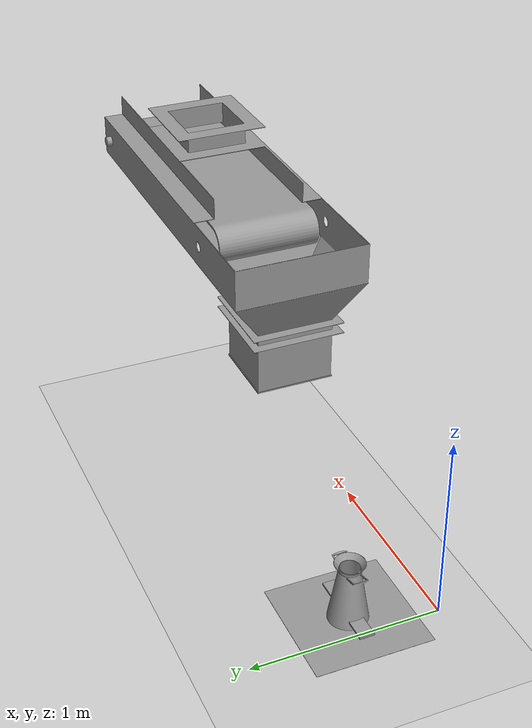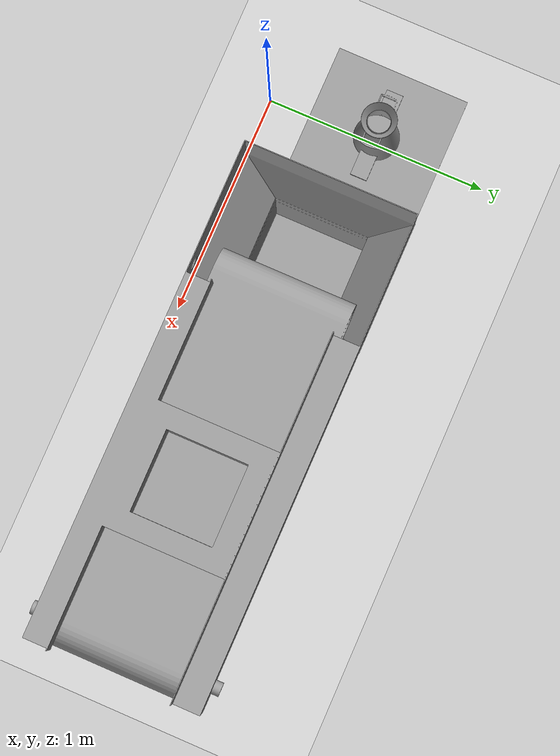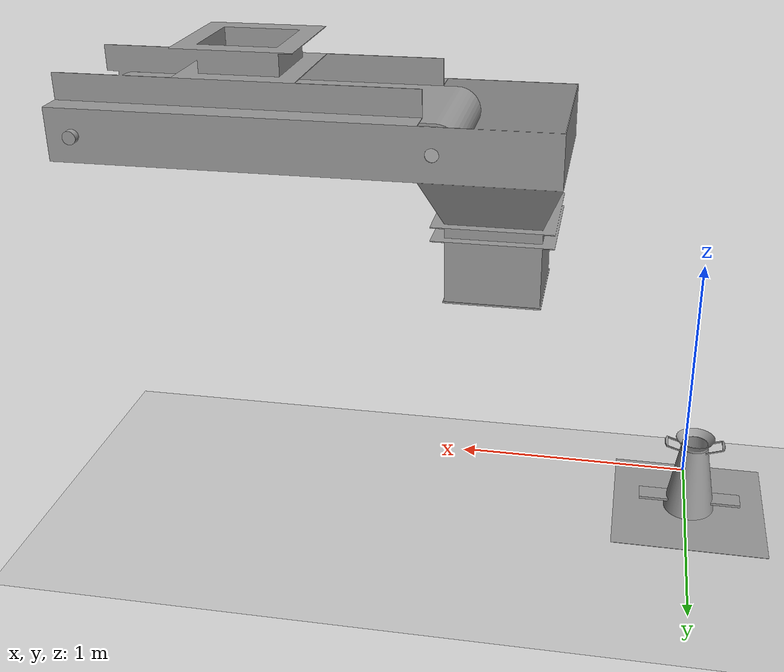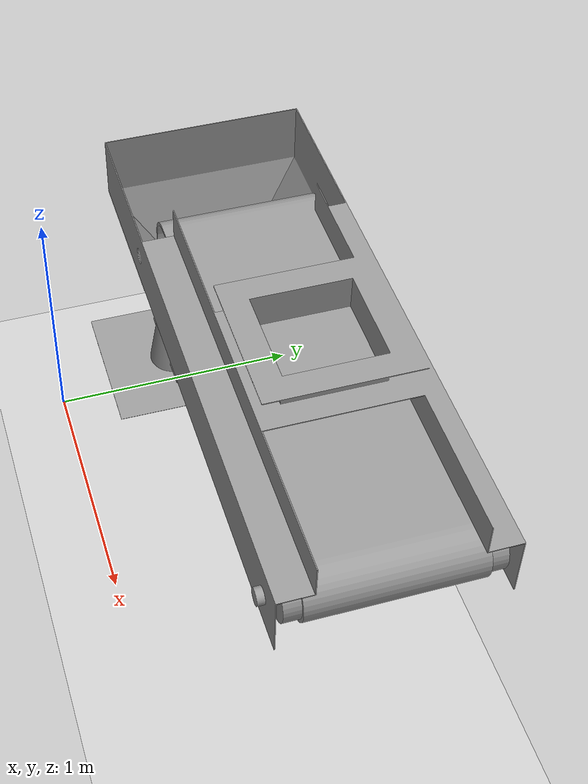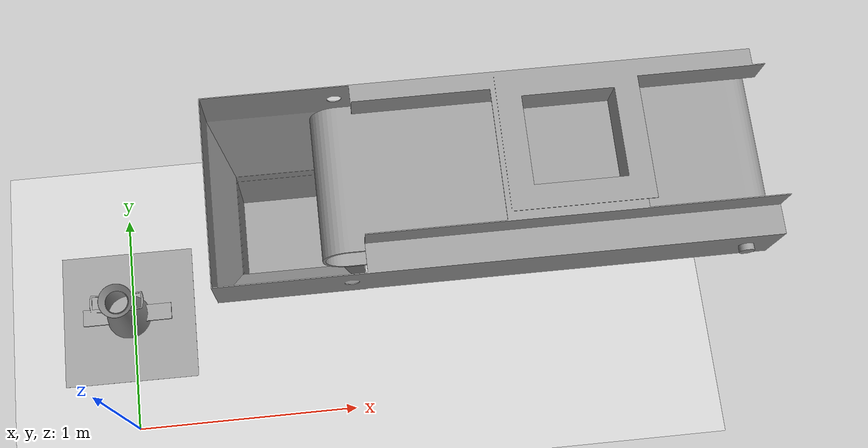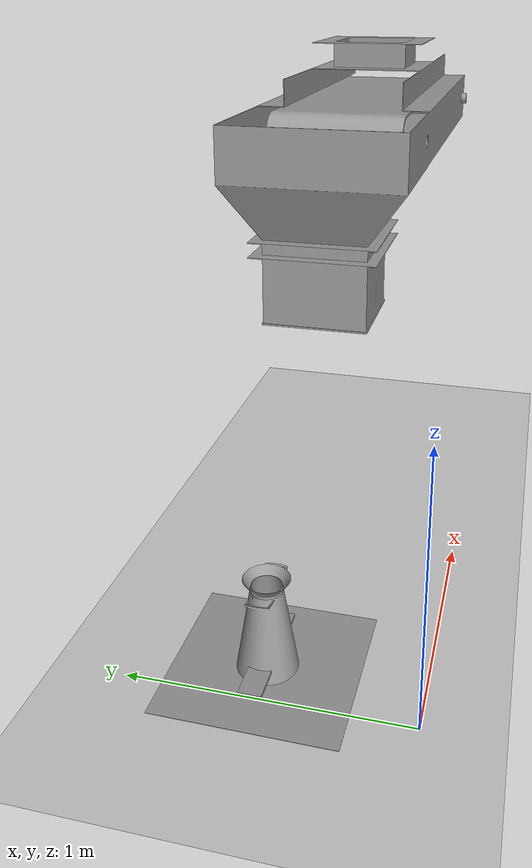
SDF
<sdf version="1.7">
 <world name="__default__">
  <model name="ground_plane">
   <static>1</static>
   <link name="link">
    <collision name="collision">
     <geometry><plane><normal>0 0 1</normal><size>100 100</size></plane></geometry>
     <surface>
      <contact><collide_bitmask>65535</collide_bitmask></contact>
      <friction><ode><mu>100</mu><mu2>50</mu2></ode></friction>
     </surface>
    </collision>
    <visual name="visual">
     <cast_shadows>0</cast_shadows>
     <geometry><plane><normal>0 0 1</normal><size>100 100</size></plane></geometry>
     <material>
      <script><uri>file://media/materials/scripts/gazebo.material</uri><name>Gazebo/Grey</name></script>
     </material>
    </visual>
   </link>
   <pose>0.013387 -1.12541 0 0 -0 0</pose>
  </model>
  <model name="feeder_rubble">
   <link name="link_3">
    <inertial>
     <mass>1</mass>
     <inertia>
      <ixx>0.166667</ixx>
      <ixy>0</ixy>
      <ixz>0</ixz>
      <iyy>0.166667</iyy>
      <iyz>0</iyz>
      <izz>0.166667</izz>
     </inertia>
    </inertial>
    <kinematic>1</kinematic>
    <visual name="visual">
     <geometry><mesh><uri>file://models/feeder_rubble/meshes/body.stl</uri><scale>1 1 1</scale></mesh></geometry>
     <material>
      <lighting>1</lighting>
      <script><uri>file://media/materials/scripts/gazebo.material</uri><name>Gazebo/Grey</name></script>
      <shader type="pixel"><normal_map>__default__</normal_map></shader>
      <ambient>0.3 0.3 0.3 1</ambient>
      <diffuse>0.7 0.7 0.7 1</diffuse>
      <specular>0.01 0.01 0.01 1</specular>
      <emissive>0 0 0 1</emissive>
     </material>
    </visual>
    <collision name="collision">
     <geometry><mesh><uri>file://models/feeder_rubble/meshes/body.stl</uri><scale>1 1 1</scale></mesh></geometry>
     <surface>
      <friction>
       <ode><mu>1</mu><mu2>1</mu2><fdir1>0 0 0</fdir1><slip1>0</slip1><slip2>0</slip2></ode>
       <torsional>
        <coefficient>1</coefficient>
        <patch_radius>0</patch_radius>
        <surface_radius>0</surface_radius>
        <use_patch_radius>1</use_patch_radius>
        <ode><slip>0</slip></ode>
       </torsional>
      </friction>
      <bounce><restitution_coefficient>0</restitution_coefficient><threshold>1e+06</threshold></bounce>
      <contact>
       <collide_without_contact>0</collide_without_contact>
       <collide_without_contact_bitmask>1</collide_without_contact_bitmask>
       <collide_bitmask>1</collide_bitmask>
       <ode>
        <soft_cfm>0</soft_cfm>
        <soft_erp>0.2</soft_erp>
        <kp>1e+13</kp>
        <kd>1</kd>
        <max_vel>0.01</max_vel>
        <min_depth>0</min_depth>
       </ode>
       <bullet>
        <split_impulse>1</split_impulse>
        <split_impulse_penetration_threshold>-0.01</split_impulse_penetration_threshold>
        <soft_cfm>0</soft_cfm>
        <soft_erp>0.2</soft_erp>
        <kp>1e+13</kp>
        <kd>1</kd>
       </bullet>
      </contact>
     </surface>
    </collision>
   </link>
   <link name="link_4">
    <inertial>
     <mass>1</mass>
     <inertia>
      <ixx>0.166667</ixx>
      <ixy>0</ixy>
      <ixz>0</ixz>
      <iyy>0.166667</iyy>
      <iyz>0</iyz>
      <izz>0.166667</izz>
     </inertia>
    </inertial>
    <kinematic>1</kinematic>
    <visual name="visual">
     <geometry><mesh><uri>file://models/feeder_rubble/meshes/belt.stl</uri><scale>1 1 1</scale></mesh></geometry>
     <material>
      <lighting>1</lighting>
      <script><uri>file://media/materials/scripts/gazebo.material</uri><name>Gazebo/Grey</name></script>
      <shader type="pixel"><normal_map>__default__</normal_map></shader>
      <ambient>0.3 0.3 0.3 1</ambient>
      <diffuse>0.7 0.7 0.7 1</diffuse>
      <specular>0.01 0.01 0.01 1</specular>
      <emissive>0 0 0 1</emissive>
     </material>
    </visual>
    <collision name="collision">
     <geometry><mesh><uri>file://models/feeder_rubble/meshes/belt.stl</uri><scale>1 1 1</scale></mesh></geometry>
     <surface>
      <friction>
       <ode><mu>1</mu><mu2>1</mu2><fdir1>0 0 0</fdir1><slip1>0</slip1><slip2>0</slip2></ode>
       <torsional>
        <coefficient>1</coefficient>
        <patch_radius>0</patch_radius>
        <surface_radius>0</surface_radius>
        <use_patch_radius>1</use_patch_radius>
        <ode><slip>0</slip></ode>
       </torsional>
      </friction>
      <bounce><restitution_coefficient>0</restitution_coefficient><threshold>1e+06</threshold></bounce>
      <contact>
       <collide_without_contact>0</collide_without_contact>
       <collide_without_contact_bitmask>1</collide_without_contact_bitmask>
       <collide_bitmask>1</collide_bitmask>
       <ode>
        <soft_cfm>0</soft_cfm>
        <soft_erp>0.2</soft_erp>
        <kp>1e+13</kp>
        <kd>1</kd>
        <max_vel>0.01</max_vel>
        <min_depth>0</min_depth>
       </ode>
       <bullet>
        <split_impulse>1</split_impulse>
        <split_impulse_penetration_threshold>-0.01</split_impulse_penetration_threshold>
        <soft_cfm>0</soft_cfm>
        <soft_erp>0.2</soft_erp>
        <kp>1e+13</kp>
        <kd>1</kd>
       </bullet>
      </contact>
     </surface>
    </collision>
   </link>
   <link name="link_5">
    <inertial>
     <mass>1</mass>
     <inertia>
      <ixx>0.166667</ixx>
      <ixy>0</ixy>
      <ixz>0</ixz>
      <iyy>0.166667</iyy>
      <iyz>0</iyz>
      <izz>0.166667</izz>
     </inertia>
    </inertial>
    <kinematic>1</kinematic>
    <visual name="visual">
     <geometry><mesh><uri>file://models/feeder_rubble/meshes/gate.stl</uri><scale>1 1 1</scale></mesh></geometry>
     <material>
      <lighting>1</lighting>
      <script><uri>file://media/materials/scripts/gazebo.material</uri><name>Gazebo/Grey</name></script>
      <shader type="pixel"><normal_map>__default__</normal_map></shader>
      <ambient>0.3 0.3 0.3 1</ambient>
      <diffuse>0.7 0.7 0.7 1</diffuse>
      <specular>0.01 0.01 0.01 1</specular>
      <emissive>0 0 0 1</emissive>
     </material>
    </visual>
    <collision name="collision">
     <geometry><mesh><uri>file://models/feeder_rubble/meshes/gate.stl</uri><scale>1 1 1</scale></mesh></geometry>
     <surface>
      <friction>
       <ode><mu>1</mu><mu2>1</mu2><fdir1>0 0 0</fdir1><slip1>0</slip1><slip2>0</slip2></ode>
       <torsional>
        <coefficient>1</coefficient>
        <patch_radius>0</patch_radius>
        <surface_radius>0</surface_radius>
        <use_patch_radius>1</use_patch_radius>
        <ode><slip>0</slip></ode>
       </torsional>
      </friction>
      <bounce><restitution_coefficient>0</restitution_coefficient><threshold>1e+06</threshold></bounce>
      <contact>
       <collide_without_contact>0</collide_without_contact>
       <collide_without_contact_bitmask>1</collide_without_contact_bitmask>
       <collide_bitmask>1</collide_bitmask>
       <ode>
        <soft_cfm>0</soft_cfm>
        <soft_erp>0.2</soft_erp>
        <kp>1e+13</kp>
        <kd>1</kd>
        <max_vel>0.01</max_vel>
        <min_depth>0</min_depth>
       </ode>
       <bullet>
        <split_impulse>1</split_impulse>
        <split_impulse_penetration_threshold>-0.01</split_impulse_penetration_threshold>
        <soft_cfm>0</soft_cfm>
        <soft_erp>0.2</soft_erp>
        <kp>1e+13</kp>
        <kd>1</kd>
       </bullet>
      </contact>
     </surface>
    </collision>
   </link>
   <link name="link_6">
    <inertial>
     <mass>1</mass>
     <inertia>
      <ixx>0.166667</ixx>
      <ixy>0</ixy>
      <ixz>0</ixz>
      <iyy>0.166667</iyy>
      <iyz>0</iyz>
      <izz>0.166667</izz>
     </inertia>
    </inertial>
    <kinematic>1</kinematic>
    <visual name="visual">
     <geometry>
      <mesh><uri>file://models/feeder_rubble/meshes/roller_1.stl</uri><scale>1 1 1</scale></mesh>
     </geometry>
     <material>
      <lighting>1</lighting>
      <script><uri>file://media/materials/scripts/gazebo.material</uri><name>Gazebo/Grey</name></script>
      <shader type="pixel"><normal_map>__default__</normal_map></shader>
      <ambient>0.3 0.3 0.3 1</ambient>
      <diffuse>0.7 0.7 0.7 1</diffuse>
      <specular>0.01 0.01 0.01 1</specular>
      <emissive>0 0 0 1</emissive>
     </material>
    </visual>
    <collision name="collision">
     <geometry>
      <mesh><uri>file://models/feeder_rubble/meshes/roller_1.stl</uri><scale>1 1 1</scale></mesh>
     </geometry>
     <surface>
      <friction>
       <ode><mu>1</mu><mu2>1</mu2><fdir1>0 0 0</fdir1><slip1>0</slip1><slip2>0</slip2></ode>
       <torsional>
        <coefficient>1</coefficient>
        <patch_radius>0</patch_radius>
        <surface_radius>0</surface_radius>
        <use_patch_radius>1</use_patch_radius>
        <ode><slip>0</slip></ode>
       </torsional>
      </friction>
      <bounce><restitution_coefficient>0</restitution_coefficient><threshold>1e+06</threshold></bounce>
      <contact>
       <collide_without_contact>0</collide_without_contact>
       <collide_without_contact_bitmask>1</collide_without_contact_bitmask>
       <collide_bitmask>1</collide_bitmask>
       <ode>
        <soft_cfm>0</soft_cfm>
        <soft_erp>0.2</soft_erp>
        <kp>1e+13</kp>
        <kd>1</kd>
        <max_vel>0.01</max_vel>
        <min_depth>0</min_depth>
       </ode>
       <bullet>
        <split_impulse>1</split_impulse>
        <split_impulse_penetration_threshold>-0.01</split_impulse_penetration_threshold>
        <soft_cfm>0</soft_cfm>
        <soft_erp>0.2</soft_erp>
        <kp>1e+13</kp>
        <kd>1</kd>
       </bullet>
      </contact>
     </surface>
    </collision>
   </link>
   <link name="link_7">
    <inertial>
     <mass>1</mass>
     <inertia>
      <ixx>0.166667</ixx>
      <ixy>0</ixy>
      <ixz>0</ixz>
      <iyy>0.166667</iyy>
      <iyz>0</iyz>
      <izz>0.166667</izz>
     </inertia>
    </inertial>
    <kinematic>1</kinematic>
    <visual name="visual">
     <geometry>
      <mesh><uri>file://models/feeder_rubble/meshes/roller_2.stl</uri><scale>1 1 1</scale></mesh>
     </geometry>
     <material>
      <lighting>1</lighting>
      <script><uri>file://media/materials/scripts/gazebo.material</uri><name>Gazebo/Grey</name></script>
      <shader type="pixel"><normal_map>__default__</normal_map></shader>
      <ambient>0.3 0.3 0.3 1</ambient>
      <diffuse>0.7 0.7 0.7 1</diffuse>
      <specular>0.01 0.01 0.01 1</specular>
      <emissive>0 0 0 1</emissive>
     </material>
    </visual>
    <collision name="collision">
     <geometry>
      <mesh><uri>file://models/feeder_rubble/meshes/roller_2.stl</uri><scale>1 1 1</scale></mesh>
     </geometry>
     <surface>
      <friction>
       <ode><mu>1</mu><mu2>1</mu2><fdir1>0 0 0</fdir1><slip1>0</slip1><slip2>0</slip2></ode>
       <torsional>
        <coefficient>1</coefficient>
        <patch_radius>0</patch_radius>
        <surface_radius>0</surface_radius>
        <use_patch_radius>1</use_patch_radius>
        <ode><slip>0</slip></ode>
       </torsional>
      </friction>
      <bounce><restitution_coefficient>0</restitution_coefficient><threshold>1e+06</threshold></bounce>
      <contact>
       <collide_without_contact>0</collide_without_contact>
       <collide_without_contact_bitmask>1</collide_without_contact_bitmask>
       <collide_bitmask>1</collide_bitmask>
       <ode>
        <soft_cfm>0</soft_cfm>
        <soft_erp>0.2</soft_erp>
        <kp>1e+13</kp>
        <kd>1</kd>
        <max_vel>0.01</max_vel>
        <min_depth>0</min_depth>
       </ode>
       <bullet>
        <split_impulse>1</split_impulse>
        <split_impulse_penetration_threshold>-0.01</split_impulse_penetration_threshold>
        <soft_cfm>0</soft_cfm>
        <soft_erp>0.2</soft_erp>
        <kp>1e+13</kp>
        <kd>1</kd>
       </bullet>
      </contact>
     </surface>
    </collision>
   </link>
   <static>0</static>
   <pose>1.5 0.5 1 0 -0 3.14</pose>
  </model>
  <model name="analyze">
   <link name="link_0">
    <inertial>
     <mass>1</mass>
     <inertia>
      <ixx>0.166667</ixx>
      <ixy>0</ixy>
      <ixz>0</ixz>
      <iyy>0.166667</iyy>
      <iyz>0</iyz>
      <izz>0.166667</izz>
     </inertia>
    </inertial>
    <kinematic>1</kinematic>
    <visual name="visual">
     <geometry><mesh><uri>file://models/analyze/meshes/cone.stl</uri><scale>1 1 1</scale></mesh></geometry>
     <material>
      <lighting>1</lighting>
      <script><uri>file://media/materials/scripts/gazebo.material</uri><name>Gazebo/Grey</name></script>
      <shader type="pixel"><normal_map>__default__</normal_map></shader>
      <ambient>0.3 0.3 0.3 1</ambient>
      <diffuse>0.7 0.7 0.7 1</diffuse>
      <specular>0.01 0.01 0.01 1</specular>
      <emissive>0 0 0 1</emissive>
     </material>
    </visual>
    <collision name="collision">
     <geometry><mesh><uri>file://models/analyze/meshes/cone.stl</uri><scale>1 1 1</scale></mesh></geometry>
     <surface>
      <friction>
       <ode><mu>1</mu><mu2>1</mu2><fdir1>0 0 0</fdir1><slip1>0</slip1><slip2>0</slip2></ode>
       <torsional>
        <coefficient>1</coefficient>
        <patch_radius>0</patch_radius>
        <surface_radius>0</surface_radius>
        <use_patch_radius>1</use_patch_radius>
        <ode><slip>0</slip></ode>
       </torsional>
      </friction>
      <bounce><restitution_coefficient>0</restitution_coefficient><threshold>1e+06</threshold></bounce>
      <contact>
       <collide_without_contact>0</collide_without_contact>
       <collide_without_contact_bitmask>1</collide_without_contact_bitmask>
       <collide_bitmask>1</collide_bitmask>
       <ode>
        <soft_cfm>0</soft_cfm>
        <soft_erp>0.2</soft_erp>
        <kp>1e+13</kp>
        <kd>1</kd>
        <max_vel>0.01</max_vel>
        <min_depth>0</min_depth>
       </ode>
       <bullet>
        <split_impulse>1</split_impulse>
        <split_impulse_penetration_threshold>-0.01</split_impulse_penetration_threshold>
        <soft_cfm>0</soft_cfm>
        <soft_erp>0.2</soft_erp>
        <kp>1e+13</kp>
        <kd>1</kd>
       </bullet>
      </contact>
     </surface>
    </collision>
   </link>
   <link name="link_1">
    <inertial>
     <mass>1</mass>
     <inertia>
      <ixx>0.166667</ixx>
      <ixy>0</ixy>
      <ixz>0</ixz>
      <iyy>0.166667</iyy>
      <iyz>0</iyz>
      <izz>0.166667</izz>
     </inertia>
    </inertial>
    <kinematic>1</kinematic>
    <visual name="visual">
     <geometry><mesh><uri>file://models/analyze/meshes/funnel.stl</uri><scale>1 1 1</scale></mesh></geometry>
     <material>
      <lighting>1</lighting>
      <script><uri>file://media/materials/scripts/gazebo.material</uri><name>Gazebo/Grey</name></script>
      <shader type="pixel"><normal_map>__default__</normal_map></shader>
      <ambient>0.3 0.3 0.3 1</ambient>
      <diffuse>0.7 0.7 0.7 1</diffuse>
      <specular>0.01 0.01 0.01 1</specular>
      <emissive>0 0 0 1</emissive>
     </material>
    </visual>
    <collision name="collision">
     <geometry><mesh><uri>file://models/analyze/meshes/funnel.stl</uri><scale>1 1 1</scale></mesh></geometry>
     <surface>
      <friction>
       <ode><mu>1</mu><mu2>1</mu2><fdir1>0 0 0</fdir1><slip1>0</slip1><slip2>0</slip2></ode>
       <torsional>
        <coefficient>1</coefficient>
        <patch_radius>0</patch_radius>
        <surface_radius>0</surface_radius>
        <use_patch_radius>1</use_patch_radius>
        <ode><slip>0</slip></ode>
       </torsional>
      </friction>
      <bounce><restitution_coefficient>0</restitution_coefficient><threshold>1e+06</threshold></bounce>
      <contact>
       <collide_without_contact>0</collide_without_contact>
       <collide_without_contact_bitmask>1</collide_without_contact_bitmask>
       <collide_bitmask>1</collide_bitmask>
       <ode>
        <soft_cfm>0</soft_cfm>
        <soft_erp>0.2</soft_erp>
        <kp>1e+13</kp>
        <kd>1</kd>
        <max_vel>0.01</max_vel>
        <min_depth>0</min_depth>
       </ode>
       <bullet>
        <split_impulse>1</split_impulse>
        <split_impulse_penetration_threshold>-0.01</split_impulse_penetration_threshold>
        <soft_cfm>0</soft_cfm>
        <soft_erp>0.2</soft_erp>
        <kp>1e+13</kp>
        <kd>1</kd>
       </bullet>
      </contact>
     </surface>
    </collision>
   </link>
   <link name="link_2">
    <inertial>
     <mass>1</mass>
     <inertia>
      <ixx>0.166667</ixx>
      <ixy>0</ixy>
      <ixz>0</ixz>
      <iyy>0.166667</iyy>
      <iyz>0</iyz>
      <izz>0.166667</izz>
     </inertia>
    </inertial>
    <kinematic>1</kinematic>
    <visual name="visual">
     <geometry><mesh><uri>file://models/analyze/meshes/sheet.stl</uri><scale>1 1 1</scale></mesh></geometry>
     <material>
      <lighting>1</lighting>
      <script><uri>file://media/materials/scripts/gazebo.material</uri><name>Gazebo/Grey</name></script>
      <shader type="pixel"><normal_map>__default__</normal_map></shader>
      <ambient>0.3 0.3 0.3 1</ambient>
      <diffuse>0.7 0.7 0.7 1</diffuse>
      <specular>0.01 0.01 0.01 1</specular>
      <emissive>0 0 0 1</emissive>
     </material>
    </visual>
    <collision name="collision">
     <geometry><mesh><uri>file://models/analyze/sheet.stl</uri><scale>1 1 1</scale></mesh></geometry>
     <surface>
      <friction>
       <ode><mu>1</mu><mu2>1</mu2><fdir1>0 0 0</fdir1><slip1>0</slip1><slip2>0</slip2></ode>
       <torsional>
        <coefficient>1</coefficient>
        <patch_radius>0</patch_radius>
        <surface_radius>0</surface_radius>
        <use_patch_radius>1</use_patch_radius>
        <ode><slip>0</slip></ode>
       </torsional>
      </friction>
      <bounce><restitution_coefficient>0</restitution_coefficient><threshold>1e+06</threshold></bounce>
      <contact>
       <collide_without_contact>0</collide_without_contact>
       <collide_without_contact_bitmask>1</collide_without_contact_bitmask>
       <collide_bitmask>1</collide_bitmask>
       <ode>
        <soft_cfm>0</soft_cfm>
        <soft_erp>0.2</soft_erp>
        <kp>1e+13</kp>
        <kd>1</kd>
        <max_vel>0.01</max_vel>
        <min_depth>0</min_depth>
       </ode>
       <bullet>
        <split_impulse>1</split_impulse>
        <split_impulse_penetration_threshold>-0.01</split_impulse_penetration_threshold>
        <soft_cfm>0</soft_cfm>
        <soft_erp>0.2</soft_erp>
        <kp>1e+13</kp>
        <kd>1</kd>
       </bullet>
      </contact>
     </surface>
    </collision>
   </link>
   <static>0</static>
   <pose>0 0.5 0.15 0 -0 0</pose>
  </model>
 </world>
</sdf>
